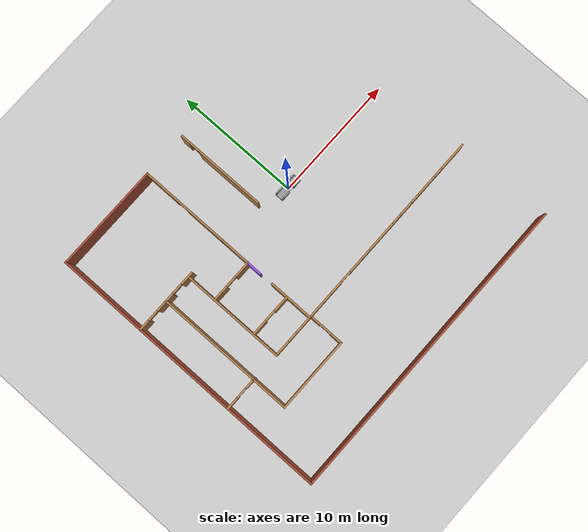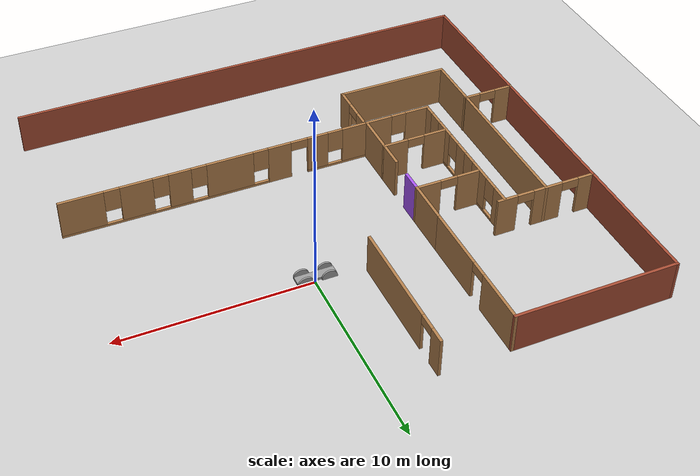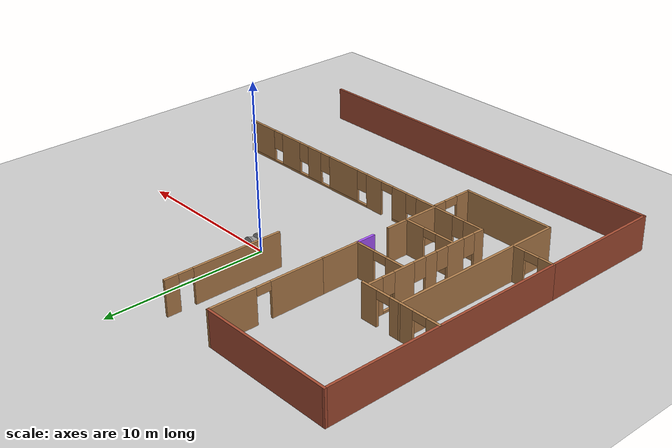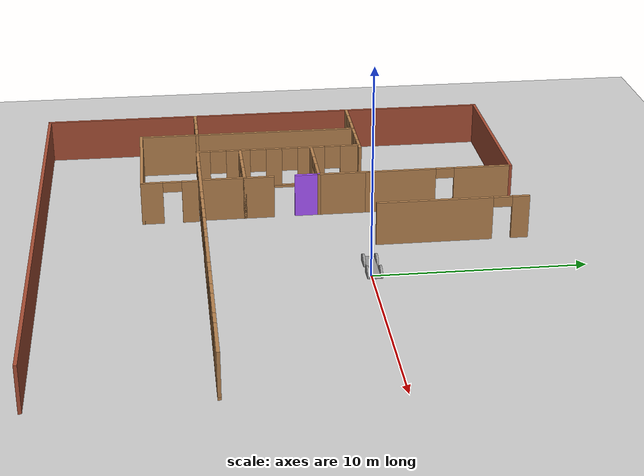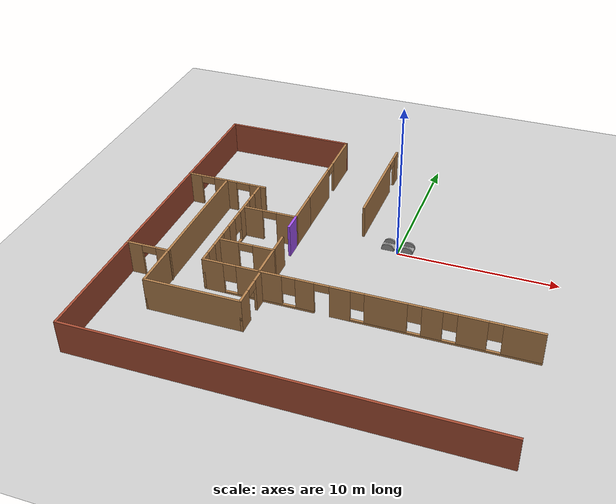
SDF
<sdf version="1.6">
 <world name="default">
  <model name="ground_plane">
   <pose>0 0 0.4 0 -0 0</pose>
   <static>1</static>
   <link name="link">
    <collision name="collision">
     <geometry><plane><normal>0 0 1</normal><size>100 100</size></plane></geometry>
     <surface>
      <contact><collide_bitmask>65535</collide_bitmask></contact>
      <friction><ode><mu>100</mu><mu2>50</mu2></ode></friction>
     </surface>
    </collision>
    <visual name="visual">
     <cast_shadows>0</cast_shadows>
     <geometry><plane><normal>0 0 1</normal><size>100 100</size></plane></geometry>
     <material>
      <script><uri>file://media/materials/scripts/gazebo.material</uri><name>Gazebo/Grey</name></script>
     </material>
    </visual>
   </link>
  </model>
  <model name="RC">
   <link name="link_0">
    <inertial>
     <mass>1</mass>
     <inertia>
      <ixx>0.166667</ixx>
      <ixy>0</ixy>
      <ixz>0</ixz>
      <iyy>0.166667</iyy>
      <iyz>0</iyz>
      <izz>0.166667</izz>
     </inertia>
    </inertial>
    <visual name="visual">
     <geometry><box><size>2 0.5 0.2</size></box></geometry>
     <material>
      <lighting>1</lighting>
      <script><uri>file://media/materials/scripts/gazebo.material</uri><name>Gazebo/Grey</name></script>
      <shader type="pixel"><normal_map>__default__</normal_map></shader>
      <ambient>0.3 0.3 0.3 1</ambient>
      <diffuse>0.7 0.7 0.7 1</diffuse>
      <specular>0.01 0.01 0.01 1</specular>
      <emissive>0 0 0 1</emissive>
     </material>
    </visual>
    <collision name="collision">
     <geometry><box><size>2 0.5 0.2</size></box></geometry>
     <surface>
      <friction>
       <ode><mu>1</mu><mu2>1</mu2><fdir1>0 0 0</fdir1><slip1>0</slip1><slip2>0</slip2></ode>
       <torsional>
        <coefficient>1</coefficient>
        <patch_radius>0</patch_radius>
        <surface_radius>0</surface_radius>
        <use_patch_radius>1</use_patch_radius>
        <ode><slip>0</slip></ode>
       </torsional>
      </friction>
      <bounce><restitution_coefficient>0</restitution_coefficient><threshold>1e+06</threshold></bounce>
      <contact>
       <collide_without_contact>0</collide_without_contact>
       <collide_without_contact_bitmask>1</collide_without_contact_bitmask>
       <collide_bitmask>1</collide_bitmask>
       <ode>
        <soft_cfm>0</soft_cfm>
        <soft_erp>0.2</soft_erp>
        <kp>1e+13</kp>
        <kd>1</kd>
        <max_vel>0.01</max_vel>
        <min_depth>0</min_depth>
       </ode>
       <bullet>
        <split_impulse>1</split_impulse>
        <split_impulse_penetration_threshold>-0.01</split_impulse_penetration_threshold>
        <soft_cfm>0</soft_cfm>
        <soft_erp>0.2</soft_erp>
        <kp>1e+13</kp>
        <kd>1</kd>
       </bullet>
      </contact>
     </surface>
    </collision>
   </link>
   <link name="link_1">
    <pose>-0.6 -0.300039 0 1.5707 -0 0</pose>
    <inertial>
     <mass>1</mass>
     <inertia><ixx>0.145833</ixx><ixy>0</ixy><ixz>0</ixz><iyy>0.145833</iyy><iyz>0</iyz><izz>0.125</izz></inertia>
    </inertial>
    <visual name="visual">
     <geometry><cylinder><radius>0.4</radius><length>0.1</length></cylinder></geometry>
     <material>
      <lighting>1</lighting>
      <script><uri>file://media/materials/scripts/gazebo.material</uri><name>Gazebo/Grey</name></script>
      <shader type="pixel"><normal_map>__default__</normal_map></shader>
      <ambient>0.3 0.3 0.3 1</ambient>
      <diffuse>0.7 0.7 0.7 1</diffuse>
      <specular>0.01 0.01 0.01 1</specular>
      <emissive>0 0 0 1</emissive>
     </material>
    </visual>
    <collision name="collision">
     <geometry><cylinder><radius>0.4</radius><length>0.1</length></cylinder></geometry>
     <surface>
      <friction>
       <ode><mu>1</mu><mu2>1</mu2><fdir1>0 0 0</fdir1><slip1>0</slip1><slip2>0</slip2></ode>
       <torsional>
        <coefficient>1</coefficient>
        <patch_radius>0</patch_radius>
        <surface_radius>0</surface_radius>
        <use_patch_radius>1</use_patch_radius>
        <ode><slip>0</slip></ode>
       </torsional>
      </friction>
      <bounce><restitution_coefficient>0</restitution_coefficient><threshold>1e+06</threshold></bounce>
      <contact>
       <collide_without_contact>0</collide_without_contact>
       <collide_without_contact_bitmask>1</collide_without_contact_bitmask>
       <collide_bitmask>1</collide_bitmask>
       <ode>
        <soft_cfm>0</soft_cfm>
        <soft_erp>0.2</soft_erp>
        <kp>1e+13</kp>
        <kd>1</kd>
        <max_vel>0.01</max_vel>
        <min_depth>0</min_depth>
       </ode>
       <bullet>
        <split_impulse>1</split_impulse>
        <split_impulse_penetration_threshold>-0.01</split_impulse_penetration_threshold>
        <soft_cfm>0</soft_cfm>
        <soft_erp>0.2</soft_erp>
        <kp>1e+13</kp>
        <kd>1</kd>
       </bullet>
      </contact>
     </surface>
    </collision>
   </link>
   <link name="link_1_clone">
    <pose>-0.6 0.300039 0 1.5707 -0 0</pose>
    <inertial>
     <mass>1</mass>
     <inertia><ixx>0.145833</ixx><ixy>0</ixy><ixz>0</ixz><iyy>0.145833</iyy><iyz>0</iyz><izz>0.125</izz></inertia>
    </inertial>
    <visual name="visual">
     <geometry><cylinder><radius>0.4</radius><length>0.1</length></cylinder></geometry>
     <material>
      <lighting>1</lighting>
      <script><uri>file://media/materials/scripts/gazebo.material</uri><name>Gazebo/Grey</name></script>
      <shader type="pixel"><normal_map>__default__</normal_map></shader>
      <ambient>0.3 0.3 0.3 1</ambient>
      <diffuse>0.7 0.7 0.7 1</diffuse>
      <specular>0.01 0.01 0.01 1</specular>
      <emissive>0 0 0 1</emissive>
     </material>
    </visual>
    <collision name="collision">
     <geometry><cylinder><radius>0.4</radius><length>0.1</length></cylinder></geometry>
     <surface>
      <friction>
       <ode><mu>1</mu><mu2>1</mu2><fdir1>0 0 0</fdir1><slip1>0</slip1><slip2>0</slip2></ode>
       <torsional>
        <coefficient>1</coefficient>
        <patch_radius>0</patch_radius>
        <surface_radius>0</surface_radius>
        <use_patch_radius>1</use_patch_radius>
        <ode><slip>0</slip></ode>
       </torsional>
      </friction>
      <bounce><restitution_coefficient>0</restitution_coefficient><threshold>1e+06</threshold></bounce>
      <contact>
       <collide_without_contact>0</collide_without_contact>
       <collide_without_contact_bitmask>1</collide_without_contact_bitmask>
       <collide_bitmask>1</collide_bitmask>
       <ode>
        <soft_cfm>0</soft_cfm>
        <soft_erp>0.2</soft_erp>
        <kp>1e+13</kp>
        <kd>1</kd>
        <max_vel>0.01</max_vel>
        <min_depth>0</min_depth>
       </ode>
       <bullet>
        <split_impulse>1</split_impulse>
        <split_impulse_penetration_threshold>-0.01</split_impulse_penetration_threshold>
        <soft_cfm>0</soft_cfm>
        <soft_erp>0.2</soft_erp>
        <kp>1e+13</kp>
        <kd>1</kd>
       </bullet>
      </contact>
     </surface>
    </collision>
   </link>
   <link name="link_1_clone_0">
    <pose>0.6 -0.300039 0 1.5707 -0 0</pose>
    <inertial>
     <mass>1</mass>
     <inertia><ixx>0.145833</ixx><ixy>0</ixy><ixz>0</ixz><iyy>0.145833</iyy><iyz>0</iyz><izz>0.125</izz></inertia>
    </inertial>
    <visual name="visual">
     <geometry><cylinder><radius>0.4</radius><length>0.1</length></cylinder></geometry>
     <material>
      <lighting>1</lighting>
      <script><uri>file://media/materials/scripts/gazebo.material</uri><name>Gazebo/Grey</name></script>
      <shader type="pixel"><normal_map>__default__</normal_map></shader>
      <ambient>0.3 0.3 0.3 1</ambient>
      <diffuse>0.7 0.7 0.7 1</diffuse>
      <specular>0.01 0.01 0.01 1</specular>
      <emissive>0 0 0 1</emissive>
     </material>
    </visual>
    <collision name="collision">
     <geometry><cylinder><radius>0.4</radius><length>0.1</length></cylinder></geometry>
     <surface>
      <friction>
       <ode><mu>1</mu><mu2>1</mu2><fdir1>0 0 0</fdir1><slip1>0</slip1><slip2>0</slip2></ode>
       <torsional>
        <coefficient>1</coefficient>
        <patch_radius>0</patch_radius>
        <surface_radius>0</surface_radius>
        <use_patch_radius>1</use_patch_radius>
        <ode><slip>0</slip></ode>
       </torsional>
      </friction>
      <bounce><restitution_coefficient>0</restitution_coefficient><threshold>1e+06</threshold></bounce>
      <contact>
       <collide_without_contact>0</collide_without_contact>
       <collide_without_contact_bitmask>1</collide_without_contact_bitmask>
       <collide_bitmask>1</collide_bitmask>
       <ode>
        <soft_cfm>0</soft_cfm>
        <soft_erp>0.2</soft_erp>
        <kp>1e+13</kp>
        <kd>1</kd>
        <max_vel>0.01</max_vel>
        <min_depth>0</min_depth>
       </ode>
       <bullet>
        <split_impulse>1</split_impulse>
        <split_impulse_penetration_threshold>-0.01</split_impulse_penetration_threshold>
        <soft_cfm>0</soft_cfm>
        <soft_erp>0.2</soft_erp>
        <kp>1e+13</kp>
        <kd>1</kd>
       </bullet>
      </contact>
     </surface>
    </collision>
   </link>
   <link name="link_1_clone_1">
    <pose>0.6 0.300039 0 1.5707 -0 0</pose>
    <inertial>
     <mass>1</mass>
     <inertia><ixx>0.145833</ixx><ixy>0</ixy><ixz>0</ixz><iyy>0.145833</iyy><iyz>0</iyz><izz>0.125</izz></inertia>
    </inertial>
    <visual name="visual">
     <geometry><cylinder><radius>0.4</radius><length>0.1</length></cylinder></geometry>
     <material>
      <lighting>1</lighting>
      <script><uri>file://media/materials/scripts/gazebo.material</uri><name>Gazebo/Grey</name></script>
      <shader type="pixel"><normal_map>__default__</normal_map></shader>
      <ambient>0.3 0.3 0.3 1</ambient>
      <diffuse>0.7 0.7 0.7 1</diffuse>
      <specular>0.01 0.01 0.01 1</specular>
      <emissive>0 0 0 1</emissive>
     </material>
    </visual>
    <collision name="collision">
     <geometry><cylinder><radius>0.4</radius><length>0.1</length></cylinder></geometry>
     <surface>
      <friction>
       <ode><mu>1</mu><mu2>1</mu2><fdir1>0 0 0</fdir1><slip1>0</slip1><slip2>0</slip2></ode>
       <torsional>
        <coefficient>1</coefficient>
        <patch_radius>0</patch_radius>
        <surface_radius>0</surface_radius>
        <use_patch_radius>1</use_patch_radius>
        <ode><slip>0</slip></ode>
       </torsional>
      </friction>
      <bounce><restitution_coefficient>0</restitution_coefficient><threshold>1e+06</threshold></bounce>
      <contact>
       <collide_without_contact>0</collide_without_contact>
       <collide_without_contact_bitmask>1</collide_without_contact_bitmask>
       <collide_bitmask>1</collide_bitmask>
       <ode>
        <soft_cfm>0</soft_cfm>
        <soft_erp>0.2</soft_erp>
        <kp>1e+13</kp>
        <kd>1</kd>
        <max_vel>0.01</max_vel>
        <min_depth>0</min_depth>
       </ode>
       <bullet>
        <split_impulse>1</split_impulse>
        <split_impulse_penetration_threshold>-0.01</split_impulse_penetration_threshold>
        <soft_cfm>0</soft_cfm>
        <soft_erp>0.2</soft_erp>
        <kp>1e+13</kp>
        <kd>1</kd>
       </bullet>
      </contact>
     </surface>
    </collision>
   </link>
   <joint name="link_0_JOINT_6" type="revolute">
    <parent>link_0</parent>
    <child>link_1_clone_1</child>
    <axis>
     <xyz>0 0 -1</xyz>
     <use_parent_model_frame>0</use_parent_model_frame>
     <limit>
      <lower>-1.79769e+308</lower>
      <upper>1.79769e+308</upper>
      <effort>-1</effort>
      <velocity>-1</velocity>
     </limit>
     <dynamics>
      <spring_reference>0</spring_reference>
      <spring_stiffness>0</spring_stiffness>
      <damping>0</damping>
     </dynamics>
    </axis>
    <physics>
     <ode><limit><cfm>0</cfm><erp>0.2</erp></limit><suspension><cfm>0</cfm><erp>0.2</erp></suspension></ode>
    </physics>
   </joint>
   <joint name="link_0_JOINT_7" type="revolute">
    <parent>link_0</parent>
    <child>link_1_clone</child>
    <axis>
     <xyz>0 0 -1</xyz>
     <use_parent_model_frame>0</use_parent_model_frame>
     <limit>
      <lower>-1.79769e+308</lower>
      <upper>1.79769e+308</upper>
      <effort>-1</effort>
      <velocity>-1</velocity>
     </limit>
     <dynamics>
      <spring_reference>0</spring_reference>
      <spring_stiffness>0</spring_stiffness>
      <damping>0</damping>
     </dynamics>
    </axis>
    <physics>
     <ode><limit><cfm>0</cfm><erp>0.2</erp></limit><suspension><cfm>0</cfm><erp>0.2</erp></suspension></ode>
    </physics>
   </joint>
   <joint name="link_0_JOINT_8" type="revolute">
    <parent>link_0</parent>
    <child>link_1_clone_0</child>
    <axis>
     <xyz>0 0 1</xyz>
     <use_parent_model_frame>0</use_parent_model_frame>
     <limit>
      <lower>-1.79769e+308</lower>
      <upper>1.79769e+308</upper>
      <effort>-1</effort>
      <velocity>-1</velocity>
     </limit>
     <dynamics>
      <spring_reference>0</spring_reference>
      <spring_stiffness>0</spring_stiffness>
      <damping>0</damping>
     </dynamics>
    </axis>
    <physics>
     <ode><limit><cfm>0</cfm><erp>0.2</erp></limit><suspension><cfm>0</cfm><erp>0.2</erp></suspension></ode>
    </physics>
   </joint>
   <joint name="link_0_JOINT_9" type="revolute">
    <parent>link_0</parent>
    <child>link_1</child>
    <axis>
     <xyz>0 0 1</xyz>
     <use_parent_model_frame>0</use_parent_model_frame>
     <limit>
      <lower>-1.79769e+308</lower>
      <upper>1.79769e+308</upper>
      <effort>-1</effort>
      <velocity>-1</velocity>
     </limit>
     <dynamics>
      <spring_reference>0</spring_reference>
      <spring_stiffness>0</spring_stiffness>
      <damping>0</damping>
     </dynamics>
    </axis>
    <physics>
     <ode><limit><cfm>0</cfm><erp>0.2</erp></limit><suspension><cfm>0</cfm><erp>0.2</erp></suspension></ode>
    </physics>
   </joint>
   <static>0</static>
   <pose>0.005741 0.027119 0.400005 0 -0 0.006289</pose>
  </model>
  <model name="Building">
   <pose>-2.11328 -3.59888 0 0 -0 0</pose>
   <link name="Wall_10">
    <pose>-5.625 1.91472 0 0 -0 3.14159</pose>
    <visual name="Wall_10_Visual_0">
     <pose>-1.07415 0 1.25 0 -0 0</pose>
     <geometry><box><size>1.35171 0.15 2.5</size></box></geometry>
     <material>
      <script><uri>file://media/materials/scripts/gazebo.material</uri><name>Gazebo/Wood</name></script>
      <ambient>1 1 1 1</ambient>
     </material>
     <meta><layer>0</layer></meta>
    </visual>
    <collision name="Wall_10_Collision_0">
     <geometry><box><size>1.35171 0.15 2.5</size></box></geometry>
     <pose>-1.07415 0 1.25 0 -0 0</pose>
    </collision>
    <visual name="Wall_10_Visual_1">
     <pose>1.12585 0 1.25 0 -0 0</pose>
     <geometry><box><size>1.24829 0.15 2.5</size></box></geometry>
     <material>
      <script><uri>file://media/materials/scripts/gazebo.material</uri><name>Gazebo/Wood</name></script>
      <ambient>1 1 1 1</ambient>
     </material>
     <meta><layer>0</layer></meta>
    </visual>
    <collision name="Wall_10_Collision_1">
     <geometry><box><size>1.24829 0.15 2.5</size></box></geometry>
     <pose>1.12585 0 1.25 0 -0 0</pose>
    </collision>
    <visual name="Wall_10_Visual_2">
     <pose>0.051708 0 2.25 0 -0 0</pose>
     <geometry><box><size>0.9 0.15 0.5</size></box></geometry>
     <material>
      <script><uri>file://media/materials/scripts/gazebo.material</uri><name>Gazebo/Wood</name></script>
      <ambient>1 1 1 1</ambient>
     </material>
     <meta><layer>0</layer></meta>
    </visual>
    <collision name="Wall_10_Collision_2">
     <geometry><box><size>0.9 0.15 0.5</size></box></geometry>
     <pose>0.051708 0 2.25 0 -0 0</pose>
    </collision>
   </link>
   <link name="Wall_12">
    <pose>-5.60058 -1.67887 0 0 -0 0</pose>
    <visual name="Wall_12_Visual_0">
     <pose>-1.13806 0 1.25 0 -0 0</pose>
     <geometry><box><size>1.22387 0.15 2.5</size></box></geometry>
     <material>
      <script><uri>file://media/materials/scripts/gazebo.material</uri><name>Gazebo/Wood</name></script>
      <ambient>1 1 1 1</ambient>
     </material>
     <meta><layer>0</layer></meta>
    </visual>
    <collision name="Wall_12_Collision_0">
     <geometry><box><size>1.22387 0.15 2.5</size></box></geometry>
     <pose>-1.13806 0 1.25 0 -0 0</pose>
    </collision>
    <visual name="Wall_12_Visual_1">
     <pose>1.06194 0 1.25 0 -0 0</pose>
     <geometry><box><size>1.37613 0.15 2.5</size></box></geometry>
     <material>
      <script><uri>file://media/materials/scripts/gazebo.material</uri><name>Gazebo/Wood</name></script>
      <ambient>1 1 1 1</ambient>
     </material>
     <meta><layer>0</layer></meta>
    </visual>
    <collision name="Wall_12_Collision_1">
     <geometry><box><size>1.37613 0.15 2.5</size></box></geometry>
     <pose>1.06194 0 1.25 0 -0 0</pose>
    </collision>
    <visual name="Wall_12_Visual_2">
     <pose>-0.076126 0 2.25 0 -0 0</pose>
     <geometry><box><size>0.9 0.15 0.5</size></box></geometry>
     <material>
      <script><uri>file://media/materials/scripts/gazebo.material</uri><name>Gazebo/Wood</name></script>
      <ambient>1 1 1 1</ambient>
     </material>
     <meta><layer>0</layer></meta>
    </visual>
    <collision name="Wall_12_Collision_2">
     <geometry><box><size>0.9 0.15 0.5</size></box></geometry>
     <pose>-0.076126 0 2.25 0 -0 0</pose>
    </collision>
   </link>
   <link name="Wall_13">
    <collision name="Wall_13_Collision">
     <geometry><box><size>2.25 0.15 2.5</size></box></geometry>
     <pose>0 0 1.25 0 -0 0</pose>
    </collision>
    <visual name="Wall_13_Visual">
     <pose>0 0 1.25 0 -0 0</pose>
     <geometry><box><size>2.25 0.15 2.5</size></box></geometry>
     <material>
      <script><uri>file://media/materials/scripts/gazebo.material</uri><name>Gazebo/Wood</name></script>
      <ambient>1 1 1 1</ambient>
     </material>
     <meta><layer>0</layer></meta>
    </visual>
    <pose>-3.92558 -2.72887 0 0 0 -1.5708</pose>
   </link>
   <link name="Wall_15">
    <collision name="Wall_15_Collision">
     <geometry><box><size>1.5 0.15 2.5</size></box></geometry>
     <pose>0 0 1.25 0 -0 0</pose>
    </collision>
    <visual name="Wall_15_Visual">
     <pose>0 0 1.25 0 -0 0</pose>
     <geometry><box><size>1.5 0.15 2.5</size></box></geometry>
     <material>
      <script><uri>file://media/materials/scripts/gazebo.material</uri><name>Gazebo/Wood</name></script>
      <ambient>0.666667 0.333333 1 1</ambient>
     </material>
     <meta><layer>0</layer></meta>
    </visual>
    <pose>-3.92558 -1.00387 0 0 -0 1.5708</pose>
   </link>
   <link name="Wall_17">
    <collision name="Wall_17_Collision">
     <geometry><box><size>1.25 0.15 2.5</size></box></geometry>
     <pose>0 0 1.25 0 -0 0</pose>
    </collision>
    <visual name="Wall_17_Visual">
     <pose>0 0 1.25 0 -0 0</pose>
     <geometry><box><size>1.25 0.15 2.5</size></box></geometry>
     <material>
      <script><uri>file://media/materials/scripts/gazebo.material</uri><name>Gazebo/Grey</name></script>
      <ambient>0.666667 0.333333 1 1</ambient>
     </material>
     <meta><layer>0</layer></meta>
    </visual>
    <pose>-3.95 1.36472 0 0 0 -1.5708</pose>
   </link>
   <link name="Wall_24">
    <pose>-3.95 7.81472 0 0 -0 1.5708</pose>
    <visual name="Wall_24_Visual_0">
     <pose>-1.89111 0 1.25 0 -0 0</pose>
     <geometry><box><size>3.46777 0.15 2.5</size></box></geometry>
     <material>
      <script><uri>file://media/materials/scripts/gazebo.material</uri><name>Gazebo/Wood</name></script>
      <ambient>1 1 1 1</ambient>
     </material>
     <meta><layer>0</layer></meta>
    </visual>
    <collision name="Wall_24_Collision_0">
     <geometry><box><size>3.46777 0.15 2.5</size></box></geometry>
     <pose>-1.89111 0 1.25 0 -0 0</pose>
    </collision>
    <visual name="Wall_24_Visual_1">
     <pose>2.18389 0 1.25 0 -0 0</pose>
     <geometry><box><size>2.88223 0.15 2.5</size></box></geometry>
     <material>
      <script><uri>file://media/materials/scripts/gazebo.material</uri><name>Gazebo/Wood</name></script>
      <ambient>1 1 1 1</ambient>
     </material>
     <meta><layer>0</layer></meta>
    </visual>
    <collision name="Wall_24_Collision_1">
     <geometry><box><size>2.88223 0.15 2.5</size></box></geometry>
     <pose>2.18389 0 1.25 0 -0 0</pose>
    </collision>
    <visual name="Wall_24_Visual_2">
     <pose>0.292772 0 2.25 0 -0 0</pose>
     <geometry><box><size>0.9 0.15 0.5</size></box></geometry>
     <material>
      <script><uri>file://media/materials/scripts/gazebo.material</uri><name>Gazebo/Wood</name></script>
      <ambient>1 1 1 1</ambient>
     </material>
     <meta><layer>0</layer></meta>
    </visual>
    <collision name="Wall_24_Collision_2">
     <geometry><box><size>0.9 0.15 0.5</size></box></geometry>
     <pose>0.292772 0 2.25 0 -0 0</pose>
    </collision>
   </link>
   <link name="Wall_28">
    <pose>-0.342826 7.80635 0 0 -0 1.5708</pose>
    <visual name="Wall_28_Visual_0">
     <pose>-0.866599 0 1.25 0 -0 0</pose>
     <geometry><box><size>5.5168 0.15 2.5</size></box></geometry>
     <material>
      <script><uri>file://media/materials/scripts/gazebo.material</uri><name>Gazebo/Wood</name></script>
      <ambient>1 1 1 1</ambient>
     </material>
     <meta><layer>0</layer></meta>
    </visual>
    <collision name="Wall_28_Collision_0">
     <geometry><box><size>5.5168 0.15 2.5</size></box></geometry>
     <pose>-0.866599 0 1.25 0 -0 0</pose>
    </collision>
    <visual name="Wall_28_Visual_1">
     <pose>3.2084 0 1.25 0 -0 0</pose>
     <geometry><box><size>0.833197 0.15 2.5</size></box></geometry>
     <material>
      <script><uri>file://media/materials/scripts/gazebo.material</uri><name>Gazebo/Wood</name></script>
      <ambient>1 1 1 1</ambient>
     </material>
     <meta><layer>0</layer></meta>
    </visual>
    <collision name="Wall_28_Collision_1">
     <geometry><box><size>0.833197 0.15 2.5</size></box></geometry>
     <pose>3.2084 0 1.25 0 -0 0</pose>
    </collision>
    <visual name="Wall_28_Visual_2">
     <pose>2.3418 0 2.25 0 -0 0</pose>
     <geometry><box><size>0.9 0.15 0.5</size></box></geometry>
     <material>
      <script><uri>file://media/materials/scripts/gazebo.material</uri><name>Gazebo/Wood</name></script>
      <ambient>1 1 1 1</ambient>
     </material>
     <meta><layer>0</layer></meta>
    </visual>
    <collision name="Wall_28_Collision_2">
     <geometry><box><size>0.9 0.15 0.5</size></box></geometry>
     <pose>2.3418 0 2.25 0 -0 0</pose>
    </collision>
   </link>
   <link name="Wall_32">
    <collision name="Wall_32_Collision">
     <geometry><box><size>8.5 0.15 2.5</size></box></geometry>
     <pose>0 0 1.25 0 -0 0</pose>
    </collision>
    <visual name="Wall_32_Visual">
     <pose>0 0 1.25 0 -0 0</pose>
     <geometry><box><size>8.5 0.15 2.5</size></box></geometry>
     <material>
      <script><uri>file://media/materials/scripts/gazebo.material</uri><name>Gazebo/Bricks</name></script>
      <ambient>0 0.333333 1 1</ambient>
     </material>
     <meta><layer>0</layer></meta>
    </visual>
    <pose>-8.125 11.3647 0 0 -0 3.14159</pose>
   </link>
   <link name="Wall_33">
    <collision name="Wall_33_Collision">
     <geometry><box><size>15.25 0.15 2.5</size></box></geometry>
     <pose>0 0 1.25 0 -0 0</pose>
    </collision>
    <visual name="Wall_33_Visual">
     <pose>0 0 1.25 0 -0 0</pose>
     <geometry><box><size>15.25 0.15 2.5</size></box></geometry>
     <material>
      <script><uri>file://media/materials/scripts/gazebo.material</uri><name>Gazebo/Bricks</name></script>
      <ambient>0 0.333333 1 1</ambient>
     </material>
     <meta><layer>0</layer></meta>
    </visual>
    <pose>-12.3 3.81472 0 0 0 -1.5708</pose>
   </link>
   <link name="Wall_34">
    <pose>-10.9689 -3.73528 0 0 -0 0</pose>
    <visual name="Wall_34_Visual_0">
     <pose>-0.895229 0 1.25 0 -0 0</pose>
     <geometry><box><size>1.02177 0.15 2.5</size></box></geometry>
     <material>
      <script><uri>file://media/materials/scripts/gazebo.material</uri><name>Gazebo/Wood</name></script>
      <ambient>1 1 1 1</ambient>
     </material>
     <meta><layer>0</layer></meta>
    </visual>
    <collision name="Wall_34_Collision_0">
     <geometry><box><size>1.02177 0.15 2.5</size></box></geometry>
     <pose>-0.895229 0 1.25 0 -0 0</pose>
    </collision>
    <visual name="Wall_34_Visual_1">
     <pose>0.960885 0 1.25 0 -0 0</pose>
     <geometry><box><size>0.890458 0.15 2.5</size></box></geometry>
     <material>
      <script><uri>file://media/materials/scripts/gazebo.material</uri><name>Gazebo/Wood</name></script>
      <ambient>1 1 1 1</ambient>
     </material>
     <meta><layer>0</layer></meta>
    </visual>
    <collision name="Wall_34_Collision_1">
     <geometry><box><size>0.890458 0.15 2.5</size></box></geometry>
     <pose>0.960885 0 1.25 0 -0 0</pose>
    </collision>
    <visual name="Wall_34_Visual_2">
     <pose>0.065657 0 2.25 0 -0 0</pose>
     <geometry><box><size>0.9 0.15 0.5</size></box></geometry>
     <material>
      <script><uri>file://media/materials/scripts/gazebo.material</uri><name>Gazebo/Wood</name></script>
      <ambient>1 1 1 1</ambient>
     </material>
     <meta><layer>0</layer></meta>
    </visual>
    <collision name="Wall_34_Collision_2">
     <geometry><box><size>0.9 0.15 0.5</size></box></geometry>
     <pose>0.065657 0 2.25 0 -0 0</pose>
    </collision>
   </link>
   <link name="Wall_35">
    <collision name="Wall_35_Collision">
     <geometry><box><size>8.25 0.15 2.5</size></box></geometry>
     <pose>0 0 1.25 0 -0 0</pose>
    </collision>
    <visual name="Wall_35_Visual">
     <pose>0 0 1.25 0 -0 0</pose>
     <geometry><box><size>8.25 0.15 2.5</size></box></geometry>
     <material>
      <script><uri>file://media/materials/scripts/gazebo.material</uri><name>Gazebo/Wood</name></script>
      <ambient>1 1 1 1</ambient>
     </material>
     <meta><layer>0</layer></meta>
    </visual>
    <pose>-9.66889 0.314724 0 0 -0 1.5708</pose>
   </link>
   <link name="Wall_37">
    <pose>-8.36889 4.36472 0 0 -0 0</pose>
    <visual name="Wall_37_Visual_0">
     <pose>-0.997307 0 1.25 0 -0 0</pose>
     <geometry><box><size>0.755386 0.15 2.5</size></box></geometry>
     <material>
      <script><uri>file://media/materials/scripts/gazebo.material</uri><name>Gazebo/Wood</name></script>
      <ambient>1 1 1 1</ambient>
     </material>
     <meta><layer>0</layer></meta>
    </visual>
    <collision name="Wall_37_Collision_0">
     <geometry><box><size>0.755386 0.15 2.5</size></box></geometry>
     <pose>-0.997307 0 1.25 0 -0 0</pose>
    </collision>
    <visual name="Wall_37_Visual_1">
     <pose>0.827693 0 1.25 0 -0 0</pose>
     <geometry><box><size>1.09461 0.15 2.5</size></box></geometry>
     <material>
      <script><uri>file://media/materials/scripts/gazebo.material</uri><name>Gazebo/Wood</name></script>
      <ambient>1 1 1 1</ambient>
     </material>
     <meta><layer>0</layer></meta>
    </visual>
    <collision name="Wall_37_Collision_1">
     <geometry><box><size>1.09461 0.15 2.5</size></box></geometry>
     <pose>0.827693 0 1.25 0 -0 0</pose>
    </collision>
    <visual name="Wall_37_Visual_2">
     <pose>-0.169614 0 2.25 0 -0 0</pose>
     <geometry><box><size>0.9 0.15 0.5</size></box></geometry>
     <material>
      <script><uri>file://media/materials/scripts/gazebo.material</uri><name>Gazebo/Wood</name></script>
      <ambient>1 1 1 1</ambient>
     </material>
     <meta><layer>0</layer></meta>
    </visual>
    <collision name="Wall_37_Collision_2">
     <geometry><box><size>0.9 0.15 0.5</size></box></geometry>
     <pose>-0.169614 0 2.25 0 -0 0</pose>
    </collision>
   </link>
   <link name="Wall_39">
    <pose>-10.9689 4.36472 0 0 -0 3.14159</pose>
    <visual name="Wall_39_Visual_0">
     <pose>-0.897214 0 1.25 0 -0 0</pose>
     <geometry><box><size>0.955572 0.15 2.5</size></box></geometry>
     <material>
      <script><uri>file://media/materials/scripts/gazebo.material</uri><name>Gazebo/Wood</name></script>
      <ambient>1 1 1 1</ambient>
     </material>
     <meta><layer>0</layer></meta>
    </visual>
    <collision name="Wall_39_Collision_0">
     <geometry><box><size>0.955572 0.15 2.5</size></box></geometry>
     <pose>-0.897214 0 1.25 0 -0 0</pose>
    </collision>
    <visual name="Wall_39_Visual_1">
     <pose>0.927786 0 1.25 0 -0 0</pose>
     <geometry><box><size>0.894428 0.15 2.5</size></box></geometry>
     <material>
      <script><uri>file://media/materials/scripts/gazebo.material</uri><name>Gazebo/Wood</name></script>
      <ambient>1 1 1 1</ambient>
     </material>
     <meta><layer>0</layer></meta>
    </visual>
    <collision name="Wall_39_Collision_1">
     <geometry><box><size>0.894428 0.15 2.5</size></box></geometry>
     <pose>0.927786 0 1.25 0 -0 0</pose>
    </collision>
    <visual name="Wall_39_Visual_2">
     <pose>0.030572 0 2.25 0 -0 0</pose>
     <geometry><box><size>0.9 0.15 0.5</size></box></geometry>
     <material>
      <script><uri>file://media/materials/scripts/gazebo.material</uri><name>Gazebo/Wood</name></script>
      <ambient>1 1 1 1</ambient>
     </material>
     <meta><layer>0</layer></meta>
    </visual>
    <collision name="Wall_39_Collision_2">
     <geometry><box><size>0.9 0.15 0.5</size></box></geometry>
     <pose>0.030572 0 2.25 0 -0 0</pose>
    </collision>
   </link>
   <link name="Wall_4">
    <pose>-7.39453 0.24905 0 0 0 -1.5708</pose>
    <visual name="Wall_4_Visual_0">
     <pose>-3.63964 0 1.25 0 -0 0</pose>
     <geometry><box><size>0.970709 0.15 2.5</size></box></geometry>
     <material>
      <script><uri>file://media/materials/scripts/gazebo.material</uri><name>Gazebo/Wood</name></script>
      <ambient>1 1 1 1</ambient>
     </material>
     <meta><layer>0</layer></meta>
    </visual>
    <collision name="Wall_4_Collision_0">
     <geometry><box><size>0.970709 0.15 2.5</size></box></geometry>
     <pose>-3.63964 0 1.25 0 -0 0</pose>
    </collision>
    <visual name="Wall_4_Visual_1">
     <pose>0.485355 0 0.25 0 -0 0</pose>
     <geometry><box><size>7.27929 0.15 0.5</size></box></geometry>
     <material>
      <script><uri>file://media/materials/scripts/gazebo.material</uri><name>Gazebo/Wood</name></script>
      <ambient>1 1 1 1</ambient>
     </material>
     <meta><layer>0</layer></meta>
    </visual>
    <collision name="Wall_4_Collision_1">
     <geometry><box><size>7.27929 0.15 0.5</size></box></geometry>
     <pose>0.485355 0 0.25 0 -0 0</pose>
    </collision>
    <visual name="Wall_4_Visual_2">
     <pose>-1.67087 0 1.5 0 -0 0</pose>
     <geometry><box><size>1.36685 0.15 2</size></box></geometry>
     <material>
      <script><uri>file://media/materials/scripts/gazebo.material</uri><name>Gazebo/Wood</name></script>
      <ambient>1 1 1 1</ambient>
     </material>
     <meta><layer>0</layer></meta>
    </visual>
    <collision name="Wall_4_Collision_2">
     <geometry><box><size>1.36685 0.15 2</size></box></geometry>
     <pose>-1.67087 0 1.5 0 -0 0</pose>
    </collision>
    <visual name="Wall_4_Visual_3">
     <pose>0.215098 0 1.5 0 -0 0</pose>
     <geometry><box><size>0.805075 0.15 2</size></box></geometry>
     <material>
      <script><uri>file://media/materials/scripts/gazebo.material</uri><name>Gazebo/Wood</name></script>
      <ambient>1 1 1 1</ambient>
     </material>
     <meta><layer>0</layer></meta>
    </visual>
    <collision name="Wall_4_Collision_3">
     <geometry><box><size>0.805075 0.15 2</size></box></geometry>
     <pose>0.215098 0 1.5 0 -0 0</pose>
    </collision>
    <visual name="Wall_4_Visual_4">
     <pose>2.02081 0 1.5 0 -0 0</pose>
     <geometry><box><size>1.20634 0.15 2</size></box></geometry>
     <material>
      <script><uri>file://media/materials/scripts/gazebo.material</uri><name>Gazebo/Wood</name></script>
      <ambient>1 1 1 1</ambient>
     </material>
     <meta><layer>0</layer></meta>
    </visual>
    <collision name="Wall_4_Collision_4">
     <geometry><box><size>1.20634 0.15 2</size></box></geometry>
     <pose>2.02081 0 1.5 0 -0 0</pose>
    </collision>
    <visual name="Wall_4_Visual_5">
     <pose>3.77449 0 1.5 0 -0 0</pose>
     <geometry><box><size>0.701021 0.15 2</size></box></geometry>
     <material>
      <script><uri>file://media/materials/scripts/gazebo.material</uri><name>Gazebo/Wood</name></script>
      <ambient>1 1 1 1</ambient>
     </material>
     <meta><layer>0</layer></meta>
    </visual>
    <collision name="Wall_4_Collision_5">
     <geometry><box><size>0.701021 0.15 2</size></box></geometry>
     <pose>3.77449 0 1.5 0 -0 0</pose>
    </collision>
    <visual name="Wall_4_Visual_6">
     <pose>-2.75429 0 1.9 0 -0 0</pose>
     <geometry><box><size>0.8 0.15 1.2</size></box></geometry>
     <material>
      <script><uri>file://media/materials/scripts/gazebo.material</uri><name>Gazebo/Wood</name></script>
      <ambient>1 1 1 1</ambient>
     </material>
     <meta><layer>0</layer></meta>
    </visual>
    <collision name="Wall_4_Collision_6">
     <geometry><box><size>0.8 0.15 1.2</size></box></geometry>
     <pose>-2.75429 0 1.9 0 -0 0</pose>
    </collision>
    <visual name="Wall_4_Visual_7">
     <pose>-0.58744 0 1.9 0 -0 0</pose>
     <geometry><box><size>0.8 0.15 1.2</size></box></geometry>
     <material>
      <script><uri>file://media/materials/scripts/gazebo.material</uri><name>Gazebo/Wood</name></script>
      <ambient>1 1 1 1</ambient>
     </material>
     <meta><layer>0</layer></meta>
    </visual>
    <collision name="Wall_4_Collision_7">
     <geometry><box><size>0.8 0.15 1.2</size></box></geometry>
     <pose>-0.58744 0 1.9 0 -0 0</pose>
    </collision>
    <visual name="Wall_4_Visual_8">
     <pose>1.01764 0 1.9 0 -0 0</pose>
     <geometry><box><size>0.8 0.15 1.2</size></box></geometry>
     <material>
      <script><uri>file://media/materials/scripts/gazebo.material</uri><name>Gazebo/Wood</name></script>
      <ambient>1 1 1 1</ambient>
     </material>
     <meta><layer>0</layer></meta>
    </visual>
    <collision name="Wall_4_Collision_8">
     <geometry><box><size>0.8 0.15 1.2</size></box></geometry>
     <pose>1.01764 0 1.9 0 -0 0</pose>
    </collision>
    <visual name="Wall_4_Visual_9">
     <pose>3.02398 0 1.9 0 -0 0</pose>
     <geometry><box><size>0.8 0.15 1.2</size></box></geometry>
     <material>
      <script><uri>file://media/materials/scripts/gazebo.material</uri><name>Gazebo/Wood</name></script>
      <ambient>1 1 1 1</ambient>
     </material>
     <meta><layer>0</layer></meta>
    </visual>
    <collision name="Wall_4_Collision_9">
     <geometry><box><size>0.8 0.15 1.2</size></box></geometry>
     <pose>3.02398 0 1.9 0 -0 0</pose>
    </collision>
   </link>
   <link name="Wall_41">
    <collision name="Wall_41_Collision">
     <geometry><box><size>7.75 0.15 2.5</size></box></geometry>
     <pose>0 0 1.25 0 -0 0</pose>
    </collision>
    <visual name="Wall_41_Visual">
     <pose>0 0 1.25 0 -0 0</pose>
     <geometry><box><size>7.75 0.15 2.5</size></box></geometry>
     <material>
      <script><uri>file://media/materials/scripts/gazebo.material</uri><name>Gazebo/Bricks</name></script>
      <ambient>0 0.333333 1 1</ambient>
     </material>
     <meta><layer>0</layer></meta>
    </visual>
    <pose>-12.3 -7.53528 0 0 0 -1.5708</pose>
   </link>
   <link name="Wall_42">
    <collision name="Wall_42_Collision">
     <geometry><box><size>24.75 0.15 2.5</size></box></geometry>
     <pose>0 0 1.25 0 -0 0</pose>
    </collision>
    <visual name="Wall_42_Visual">
     <pose>0 0 1.25 0 -0 0</pose>
     <geometry><box><size>24.75 0.15 2.5</size></box></geometry>
     <material>
      <script><uri>file://media/materials/scripts/gazebo.material</uri><name>Gazebo/Bricks</name></script>
      <ambient>0 0.333333 1 1</ambient>
     </material>
     <meta><layer>0</layer></meta>
    </visual>
    <pose>0 -11.3353 0 0 -0 0</pose>
   </link>
   <link name="Wall_45">
    <collision name="Wall_45_Collision">
     <geometry><box><size>3 0.15 2.5</size></box></geometry>
     <pose>0 0 1.25 0 -0 0</pose>
    </collision>
    <visual name="Wall_45_Visual">
     <pose>0 0 1.25 0 -0 0</pose>
     <geometry><box><size>3 0.15 2.5</size></box></geometry>
     <material>
      <script><uri>file://media/materials/scripts/gazebo.material</uri><name>Gazebo/Wood</name></script>
      <ambient>1 1 1 1</ambient>
     </material>
     <meta><layer>0</layer></meta>
    </visual>
    <pose>-9.66889 -5.16028 0 0 0 -1.5708</pose>
   </link>
   <link name="Wall_46">
    <collision name="Wall_46_Collision">
     <geometry><box><size>6 0.15 2.5</size></box></geometry>
     <pose>0 0 1.25 0 -0 0</pose>
    </collision>
    <visual name="Wall_46_Visual">
     <pose>0 0 1.25 0 -0 0</pose>
     <geometry><box><size>6 0.15 2.5</size></box></geometry>
     <material>
      <script><uri>file://media/materials/scripts/gazebo.material</uri><name>Gazebo/Wood</name></script>
      <ambient>1 1 1 1</ambient>
     </material>
     <meta><layer>0</layer></meta>
    </visual>
    <pose>-6.74389 -6.58528 0 0 -0 0</pose>
   </link>
   <link name="Wall_47">
    <pose>-3.81889 -5.28528 0 0 -0 1.5708</pose>
    <visual name="Wall_47_Visual_0">
     <pose>-0.843464 0 1.25 0 -0 0</pose>
     <geometry><box><size>1.06307 0.15 2.5</size></box></geometry>
     <material>
      <script><uri>file://media/materials/scripts/gazebo.material</uri><name>Gazebo/Wood</name></script>
      <ambient>1 1 1 1</ambient>
     </material>
     <meta><layer>0</layer></meta>
    </visual>
    <collision name="Wall_47_Collision_0">
     <geometry><box><size>1.06307 0.15 2.5</size></box></geometry>
     <pose>-0.843464 0 1.25 0 -0 0</pose>
    </collision>
    <visual name="Wall_47_Visual_1">
     <pose>0.981536 0 1.25 0 -0 0</pose>
     <geometry><box><size>0.786929 0.15 2.5</size></box></geometry>
     <material>
      <script><uri>file://media/materials/scripts/gazebo.material</uri><name>Gazebo/Wood</name></script>
      <ambient>1 1 1 1</ambient>
     </material>
     <meta><layer>0</layer></meta>
    </visual>
    <collision name="Wall_47_Collision_1">
     <geometry><box><size>0.786929 0.15 2.5</size></box></geometry>
     <pose>0.981536 0 1.25 0 -0 0</pose>
    </collision>
    <visual name="Wall_47_Visual_2">
     <pose>0.138071 0 2.25 0 -0 0</pose>
     <geometry><box><size>0.9 0.15 0.5</size></box></geometry>
     <material>
      <script><uri>file://media/materials/scripts/gazebo.material</uri><name>Gazebo/Wood</name></script>
      <ambient>1 1 1 1</ambient>
     </material>
     <meta><layer>0</layer></meta>
    </visual>
    <collision name="Wall_47_Collision_2">
     <geometry><box><size>0.9 0.15 0.5</size></box></geometry>
     <pose>0.138071 0 2.25 0 -0 0</pose>
    </collision>
   </link>
   <link name="Wall_5">
    <pose>2.40547 -3.80095 0 0 -0 0</pose>
    <visual name="Wall_5_Visual_0">
     <pose>-9.20403 0 1.25 0 -0 0</pose>
     <geometry><box><size>1.34195 0.15 2.5</size></box></geometry>
     <material>
      <script><uri>file://media/materials/scripts/gazebo.material</uri><name>Gazebo/Wood</name></script>
      <ambient>1 1 1 1</ambient>
     </material>
     <meta><layer>0</layer></meta>
    </visual>
    <collision name="Wall_5_Collision_0">
     <geometry><box><size>1.34195 0.15 2.5</size></box></geometry>
     <pose>-9.20403 0 1.25 0 -0 0</pose>
    </collision>
    <visual name="Wall_5_Visual_1">
     <pose>-1.50114 0 1.25 0 -0 0</pose>
     <geometry><box><size>1.23531 0.15 2.5</size></box></geometry>
     <material>
      <script><uri>file://media/materials/scripts/gazebo.material</uri><name>Gazebo/Wood</name></script>
      <ambient>1 1 1 1</ambient>
     </material>
     <meta><layer>0</layer></meta>
    </visual>
    <collision name="Wall_5_Collision_1">
     <geometry><box><size>1.23531 0.15 2.5</size></box></geometry>
     <pose>-1.50114 0 1.25 0 -0 0</pose>
    </collision>
    <visual name="Wall_5_Visual_2">
     <pose>-5.77592 0 0.25 0 -0 0</pose>
     <geometry><box><size>5.51426 0.15 0.5</size></box></geometry>
     <material>
      <script><uri>file://media/materials/scripts/gazebo.material</uri><name>Gazebo/Wood</name></script>
      <ambient>1 1 1 1</ambient>
     </material>
     <meta><layer>0</layer></meta>
    </visual>
    <collision name="Wall_5_Collision_2">
     <geometry><box><size>5.51426 0.15 0.5</size></box></geometry>
     <pose>-5.77592 0 0.25 0 -0 0</pose>
    </collision>
    <visual name="Wall_5_Visual_3">
     <pose>4.49576 0 0.25 0 -0 0</pose>
     <geometry><box><size>10.7585 0.15 0.5</size></box></geometry>
     <material>
      <script><uri>file://media/materials/scripts/gazebo.material</uri><name>Gazebo/Wood</name></script>
      <ambient>1 1 1 1</ambient>
     </material>
     <meta><layer>0</layer></meta>
    </visual>
    <collision name="Wall_5_Collision_3">
     <geometry><box><size>10.7585 0.15 0.5</size></box></geometry>
     <pose>4.49576 0 0.25 0 -0 0</pose>
    </collision>
    <visual name="Wall_5_Visual_4">
     <pose>-6.33869 0 1.5 0 -0 0</pose>
     <geometry><box><size>2.78873 0.15 2</size></box></geometry>
     <material>
      <script><uri>file://media/materials/scripts/gazebo.material</uri><name>Gazebo/Wood</name></script>
      <ambient>1 1 1 1</ambient>
     </material>
     <meta><layer>0</layer></meta>
    </visual>
    <collision name="Wall_5_Collision_4">
     <geometry><box><size>2.78873 0.15 2</size></box></geometry>
     <pose>-6.33869 0 1.5 0 -0 0</pose>
    </collision>
    <visual name="Wall_5_Visual_5">
     <pose>-3.58156 0 1.5 0 -0 0</pose>
     <geometry><box><size>1.12553 0.15 2</size></box></geometry>
     <material>
      <script><uri>file://media/materials/scripts/gazebo.material</uri><name>Gazebo/Wood</name></script>
      <ambient>1 1 1 1</ambient>
     </material>
     <meta><layer>0</layer></meta>
    </visual>
    <collision name="Wall_5_Collision_5">
     <geometry><box><size>1.12553 0.15 2</size></box></geometry>
     <pose>-3.58156 0 1.5 0 -0 0</pose>
    </collision>
    <visual name="Wall_5_Visual_6">
     <pose>-3.58156 0 1.5 0 -0 0</pose>
     <geometry><box><size>1.12553 0.15 2</size></box></geometry>
     <material>
      <script><uri>file://media/materials/scripts/gazebo.material</uri><name>Gazebo/Wood</name></script>
      <ambient>1 1 1 1</ambient>
     </material>
     <meta><layer>0</layer></meta>
    </visual>
    <collision name="Wall_5_Collision_6">
     <geometry><box><size>1.12553 0.15 2</size></box></geometry>
     <pose>-3.58156 0 1.5 0 -0 0</pose>
    </collision>
    <visual name="Wall_5_Visual_7">
     <pose>1.14701 0 1.5 0 -0 0</pose>
     <geometry><box><size>2.46098 0.15 2</size></box></geometry>
     <material>
      <script><uri>file://media/materials/scripts/gazebo.material</uri><name>Gazebo/Wood</name></script>
      <ambient>1 1 1 1</ambient>
     </material>
     <meta><layer>0</layer></meta>
    </visual>
    <collision name="Wall_5_Collision_7">
     <geometry><box><size>2.46098 0.15 2</size></box></geometry>
     <pose>1.14701 0 1.5 0 -0 0</pose>
    </collision>
    <visual name="Wall_5_Visual_8">
     <pose>3.76194 0 1.5 0 -0 0</pose>
     <geometry><box><size>1.16889 0.15 2</size></box></geometry>
     <material>
      <script><uri>file://media/materials/scripts/gazebo.material</uri><name>Gazebo/Wood</name></script>
      <ambient>1 1 1 1</ambient>
     </material>
     <meta><layer>0</layer></meta>
    </visual>
    <collision name="Wall_5_Collision_8">
     <geometry><box><size>1.16889 0.15 2</size></box></geometry>
     <pose>3.76194 0 1.5 0 -0 0</pose>
    </collision>
    <visual name="Wall_5_Visual_9">
     <pose>5.97694 0 1.5 0 -0 0</pose>
     <geometry><box><size>1.66111 0.15 2</size></box></geometry>
     <material>
      <script><uri>file://media/materials/scripts/gazebo.material</uri><name>Gazebo/Wood</name></script>
      <ambient>1 1 1 1</ambient>
     </material>
     <meta><layer>0</layer></meta>
    </visual>
    <collision name="Wall_5_Collision_9">
     <geometry><box><size>1.66111 0.15 2</size></box></geometry>
     <pose>5.97694 0 1.5 0 -0 0</pose>
    </collision>
    <visual name="Wall_5_Visual_10">
     <pose>8.74125 0 1.5 0 -0 0</pose>
     <geometry><box><size>2.2675 0.15 2</size></box></geometry>
     <material>
      <script><uri>file://media/materials/scripts/gazebo.material</uri><name>Gazebo/Wood</name></script>
      <ambient>1 1 1 1</ambient>
     </material>
     <meta><layer>0</layer></meta>
    </visual>
    <collision name="Wall_5_Collision_10">
     <geometry><box><size>2.2675 0.15 2</size></box></geometry>
     <pose>8.74125 0 1.5 0 -0 0</pose>
    </collision>
    <visual name="Wall_5_Visual_11">
     <pose>-8.13305 0 1.9 0 -0 0</pose>
     <geometry><box><size>0.8 0.15 1.2</size></box></geometry>
     <material>
      <script><uri>file://media/materials/scripts/gazebo.material</uri><name>Gazebo/Wood</name></script>
      <ambient>1 1 1 1</ambient>
     </material>
     <meta><layer>0</layer></meta>
    </visual>
    <collision name="Wall_5_Collision_11">
     <geometry><box><size>0.8 0.15 1.2</size></box></geometry>
     <pose>-8.13305 0 1.9 0 -0 0</pose>
    </collision>
    <visual name="Wall_5_Visual_12">
     <pose>-0.483483 0 1.9 0 -0 0</pose>
     <geometry><box><size>0.8 0.15 1.2</size></box></geometry>
     <material>
      <script><uri>file://media/materials/scripts/gazebo.material</uri><name>Gazebo/Wood</name></script>
      <ambient>1 1 1 1</ambient>
     </material>
     <meta><layer>0</layer></meta>
    </visual>
    <collision name="Wall_5_Collision_12">
     <geometry><box><size>0.8 0.15 1.2</size></box></geometry>
     <pose>-0.483483 0 1.9 0 -0 0</pose>
    </collision>
    <visual name="Wall_5_Visual_13">
     <pose>-4.54432 0 1.9 0 -0 0</pose>
     <geometry><box><size>0.8 0.15 1.2</size></box></geometry>
     <material>
      <script><uri>file://media/materials/scripts/gazebo.material</uri><name>Gazebo/Wood</name></script>
      <ambient>1 1 1 1</ambient>
     </material>
     <meta><layer>0</layer></meta>
    </visual>
    <collision name="Wall_5_Collision_13">
     <geometry><box><size>0.8 0.15 1.2</size></box></geometry>
     <pose>-4.54432 0 1.9 0 -0 0</pose>
    </collision>
    <visual name="Wall_5_Visual_14">
     <pose>2.7775 0 1.9 0 -0 0</pose>
     <geometry><box><size>0.8 0.15 1.2</size></box></geometry>
     <material>
      <script><uri>file://media/materials/scripts/gazebo.material</uri><name>Gazebo/Wood</name></script>
      <ambient>1 1 1 1</ambient>
     </material>
     <meta><layer>0</layer></meta>
    </visual>
    <collision name="Wall_5_Collision_14">
     <geometry><box><size>0.8 0.15 1.2</size></box></geometry>
     <pose>2.7775 0 1.9 0 -0 0</pose>
    </collision>
    <visual name="Wall_5_Visual_15">
     <pose>4.74639 0 1.9 0 -0 0</pose>
     <geometry><box><size>0.8 0.15 1.2</size></box></geometry>
     <material>
      <script><uri>file://media/materials/scripts/gazebo.material</uri><name>Gazebo/Wood</name></script>
      <ambient>1 1 1 1</ambient>
     </material>
     <meta><layer>0</layer></meta>
    </visual>
    <collision name="Wall_5_Collision_15">
     <geometry><box><size>0.8 0.15 1.2</size></box></geometry>
     <pose>4.74639 0 1.9 0 -0 0</pose>
    </collision>
    <visual name="Wall_5_Visual_16">
     <pose>7.2075 0 1.9 0 -0 0</pose>
     <geometry><box><size>0.8 0.15 1.2</size></box></geometry>
     <material>
      <script><uri>file://media/materials/scripts/gazebo.material</uri><name>Gazebo/Wood</name></script>
      <ambient>1 1 1 1</ambient>
     </material>
     <meta><layer>0</layer></meta>
    </visual>
    <collision name="Wall_5_Collision_16">
     <geometry><box><size>0.8 0.15 1.2</size></box></geometry>
     <pose>7.2075 0 1.9 0 -0 0</pose>
    </collision>
    <visual name="Wall_5_Visual_17">
     <pose>-2.56879 0 2.25 0 -0 0</pose>
     <geometry><box><size>0.9 0.15 0.5</size></box></geometry>
     <material>
      <script><uri>file://media/materials/scripts/gazebo.material</uri><name>Gazebo/Wood</name></script>
      <ambient>1 1 1 1</ambient>
     </material>
     <meta><layer>0</layer></meta>
    </visual>
    <collision name="Wall_5_Collision_17">
     <geometry><box><size>0.9 0.15 0.5</size></box></geometry>
     <pose>-2.56879 0 2.25 0 -0 0</pose>
    </collision>
    <visual name="Wall_5_Visual_18">
     <pose>-2.56879 0 2.25 0 -0 0</pose>
     <geometry><box><size>0.9 0.15 0.5</size></box></geometry>
     <material>
      <script><uri>file://media/materials/scripts/gazebo.material</uri><name>Gazebo/Wood</name></script>
      <ambient>1 1 1 1</ambient>
     </material>
     <meta><layer>0</layer></meta>
    </visual>
    <collision name="Wall_5_Collision_18">
     <geometry><box><size>0.9 0.15 0.5</size></box></geometry>
     <pose>-2.56879 0 2.25 0 -0 0</pose>
    </collision>
   </link>
   <link name="Wall_9">
    <collision name="Wall_9_Collision">
     <geometry><box><size>2.5 0.15 2.5</size></box></geometry>
     <pose>0 0 1.25 0 -0 0</pose>
    </collision>
    <visual name="Wall_9_Visual">
     <pose>0 0 1.25 0 -0 0</pose>
     <geometry><box><size>2.5 0.15 2.5</size></box></geometry>
     <material>
      <script><uri>file://media/materials/scripts/gazebo.material</uri><name>Gazebo/Wood</name></script>
      <ambient>1 1 1 1</ambient>
     </material>
     <meta><layer>0</layer></meta>
    </visual>
    <pose>-3.95 3.08972 0 0 0 -1.5708</pose>
   </link>
   <static>1</static>
  </model>
 </world>
</sdf>
